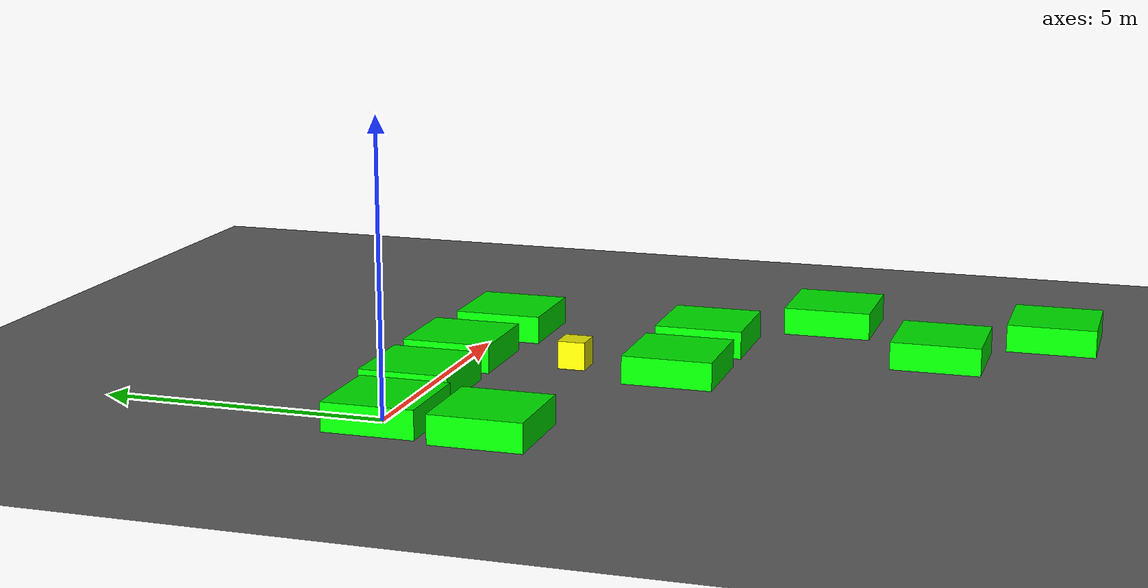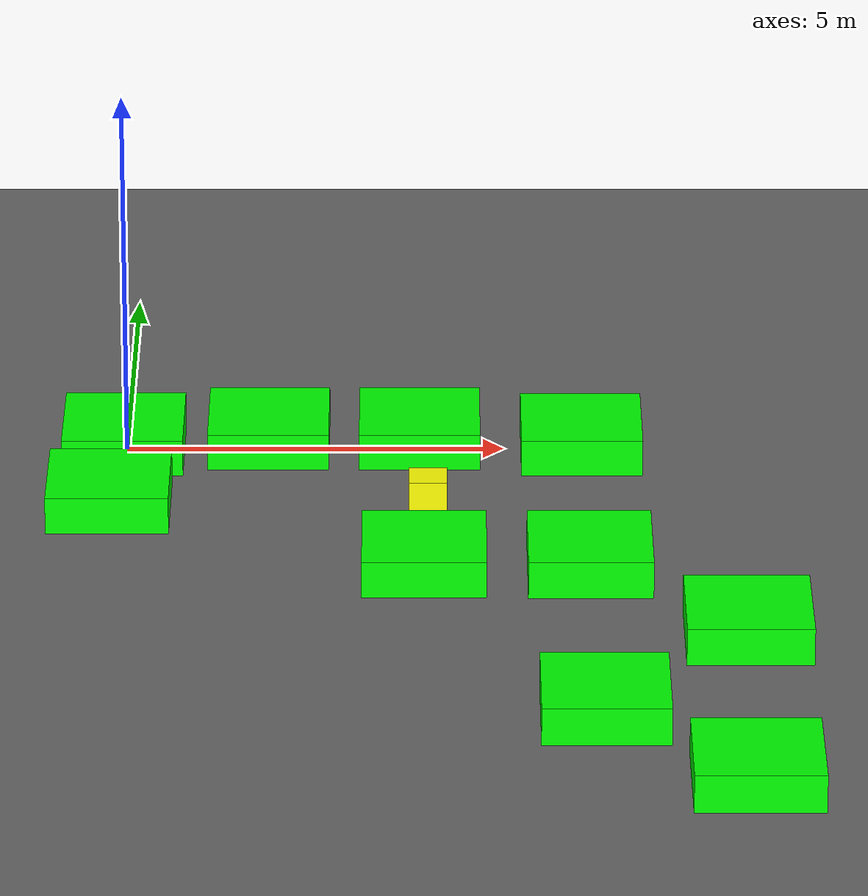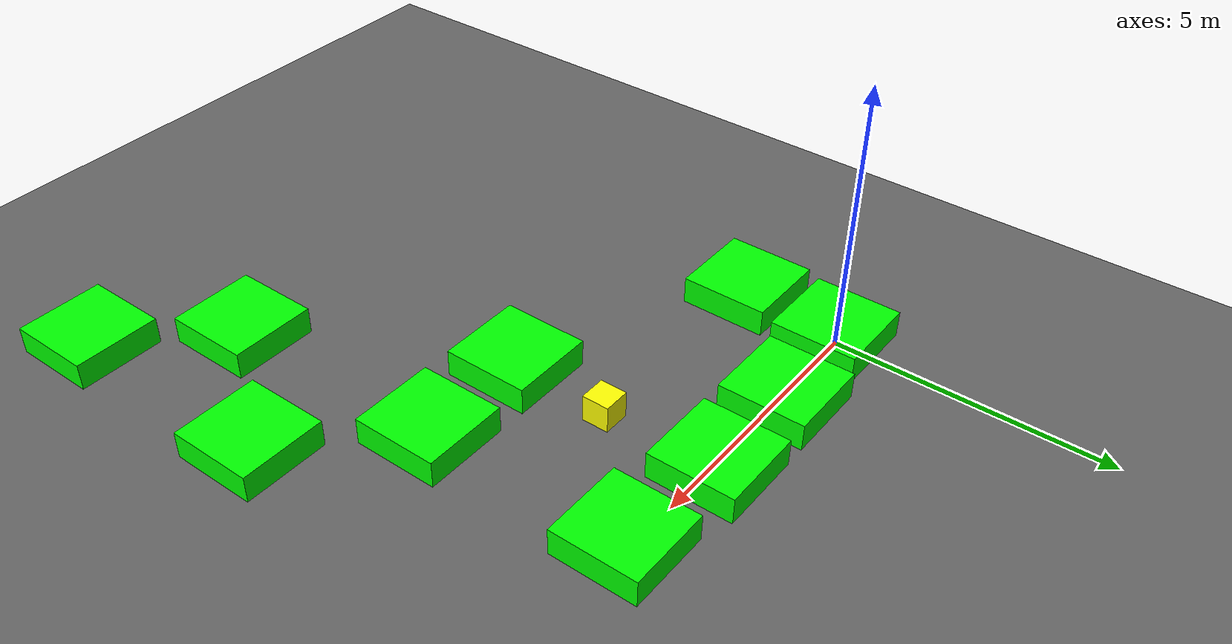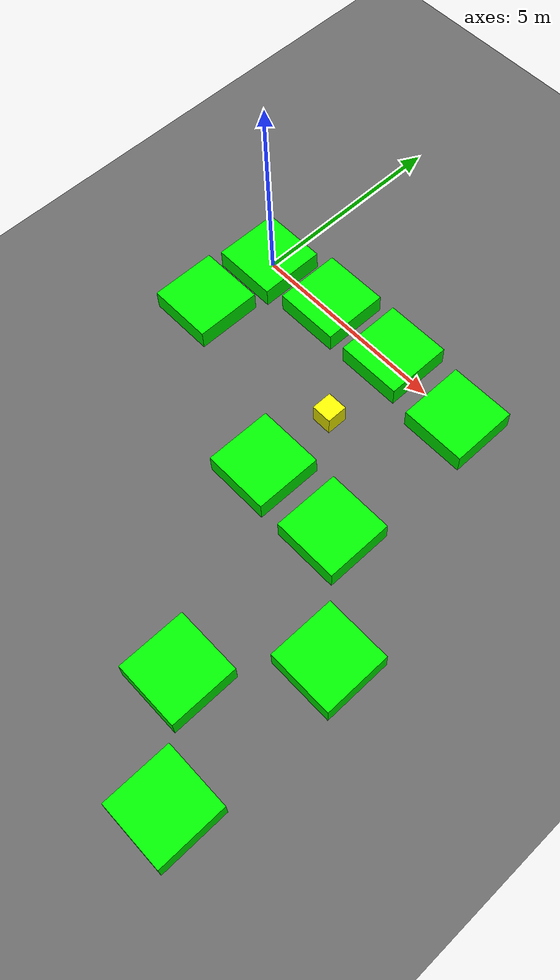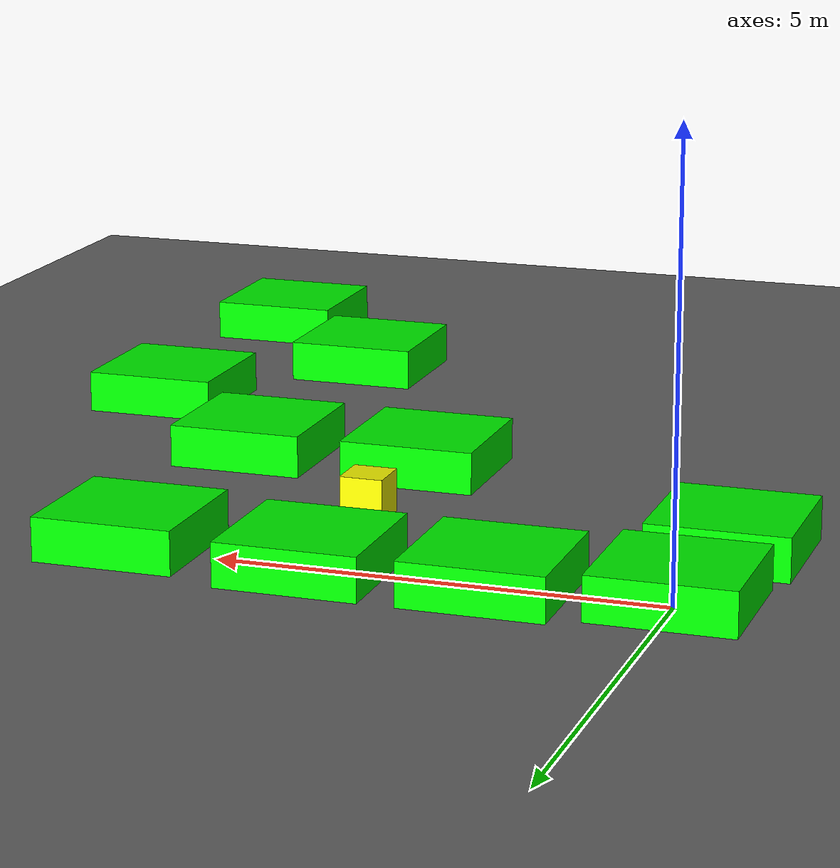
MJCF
<mujoco model="lvl5_corridor_obs10_d10_depth3_seed0">
    <compiler angle="degree" coordinate="local" inertiafromgeom="true"/>
    <option integrator="RK4" timestep="0.01"/>

    <asset>
        <texture builtin="gradient" height="100" rgb1="0.6 0.8 1" rgb2="0 0 0" type="skybox" width="100"/>
        <texture name="floor_texture" type="2d" builtin="checker" width="100" height="100" rgb1="0 0 0" rgb2="0.8 0.8 0.8"/>
        <material name="MatPlane" reflectance="0.5" shininess="1" specular="1" texrepeat="10 10" texture="floor_texture"/>
    </asset>

    <!-- Excluding the contact between the agent and the goal, and the agent and the floor -->
    <contact>
        <exclude body1="agent" body2="goal"/>
        <exclude body1 = "agent" body2 = "floor"/>
    </contact>

    <extension>
        <plugin plugin = "mujoco.pid">
            <instance name = "pid1">
                <config key="kp" value="2"/>
                <config key="ki" value="0"/>
                <config key="kd" value="55"/>
            </instance>
        </plugin>
    </extension>

    <worldbody>
        <light cutoff="100" diffuse="1 1 1" dir="-0 0 -1.3" directional="true" exponent="1" pos="0 0 1.3" specular=".1 .1 .1"/>
        <body name="floor" pos="0 0 0">
            <geom name="floor_geom" type="plane" size="20 20 0.1" material="MatPlane"/>
        </body>

                <body name="goal" pos="12.0000 -12.0000 0">
            <geom name="goal_geom" type="plane" size="0.5 0.5 1" pos="0 0 0" rgba="1 0 0 1"/>
        </body>

                <body name="agent" pos="4.0000 -2.0000 0.250">
            <joint name="j1" type="slide" axis ="1 0 0 "/>
            <joint name="j2" type="slide" axis ="0 1 0 "/>
            <geom name="agent_geom" type="box" size="0.25 0.25 0.250" rgba="1 1 0 1"/>
        </body>

        <body name="obstacle1" pos="-0.0359 -0.0803 0.250">  <geom name="obstacle1_geom" type="box" size="0.8000 0.8000 0.250" rgba="0 1 0 1"/></body>
        <body name="obstacle2" pos="1.8866 0.0984 0.250">  <geom name="obstacle2_geom" type="box" size="0.8000 0.8000 0.250" rgba="0 1 0 1"/></body>
        <body name="obstacle3" pos="3.8891 0.1022 0.250">  <geom name="obstacle3_geom" type="box" size="0.8000 0.8000 0.250" rgba="0 1 0 1"/></body>
        <body name="obstacle4" pos="6.0338 -0.0927 0.250">  <geom name="obstacle4_geom" type="box" size="0.8000 0.8000 0.250" rgba="0 1 0 1"/></body>
        <body name="obstacle5" pos="-0.1697 -1.9381 0.250">  <geom name="obstacle5_geom" type="box" size="0.8000 0.8000 0.250" rgba="0 1 0 1"/></body>
        <body name="obstacle6" pos="3.9489 -3.8959 0.250">  <geom name="obstacle6_geom" type="box" size="0.8000 0.8000 0.250" rgba="0 1 0 1"/></body>
        <body name="obstacle7" pos="6.0757 -3.9078 0.250">  <geom name="obstacle7_geom" type="box" size="0.8000 0.8000 0.250" rgba="0 1 0 1"/></body>
        <body name="obstacle8" pos="8.0318 -5.8881 0.250">  <geom name="obstacle8_geom" type="box" size="0.8000 0.8000 0.250" rgba="0 1 0 1"/></body>
        <body name="obstacle9" pos="6.1812 -8.1640 0.250">  <geom name="obstacle9_geom" type="box" size="0.8000 0.8000 0.250" rgba="0 1 0 1"/></body>
        <body name="obstacle10" pos="7.9844 -10.0077 0.250">  <geom name="obstacle10_geom" type="box" size="0.8000 0.8000 0.250" rgba="0 1 0 1"/></body>

    </worldbody>

    <sensor>
<!-- SENSORS -->

        <distance name="dist1" geom1="agent_geom" geom2="obstacle1_geom" cutoff="1.5"/>
        <distance name="dist2" geom1="agent_geom" geom2="obstacle2_geom" cutoff="1.5"/>
        <distance name="dist3" geom1="agent_geom" geom2="obstacle3_geom" cutoff="1.5"/>
        <distance name="dist4" geom1="agent_geom" geom2="obstacle4_geom" cutoff="1.5"/>
        <distance name="dist5" geom1="agent_geom" geom2="obstacle5_geom" cutoff="1.5"/>
        <distance name="dist6" geom1="agent_geom" geom2="obstacle6_geom" cutoff="1.5"/>
        <distance name="dist7" geom1="agent_geom" geom2="obstacle7_geom" cutoff="1.5"/>
        <distance name="dist8" geom1="agent_geom" geom2="obstacle8_geom" cutoff="1.5"/>
        <distance name="dist9" geom1="agent_geom" geom2="obstacle9_geom" cutoff="1.5"/>
        <distance name="dist10" geom1="agent_geom" geom2="obstacle10_geom" cutoff="1.5"/>
</sensor>

    <actuator>
        <plugin joint="j1" plugin="mujoco.pid" instance="pid1" />
        <plugin joint="j2" plugin="mujoco.pid" instance="pid1"/>
    </actuator>
</mujoco>
